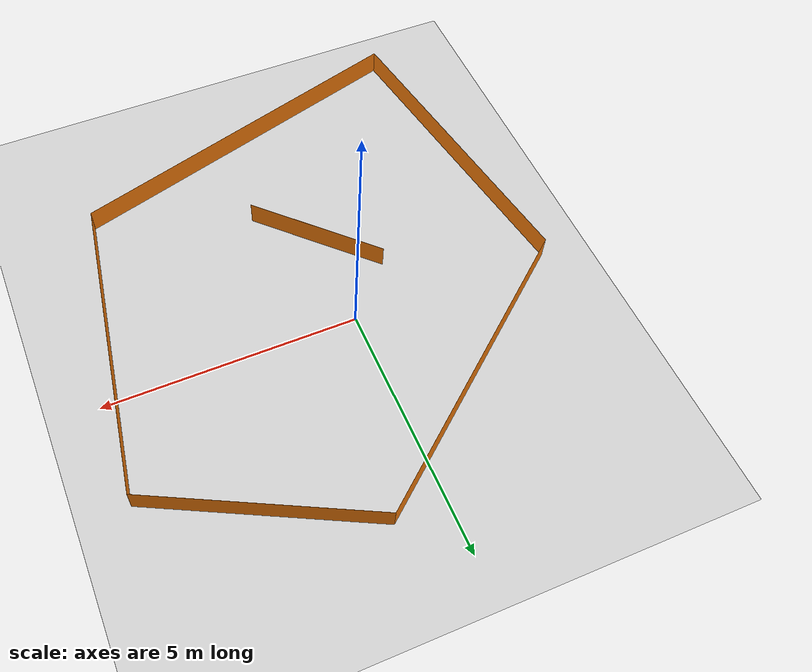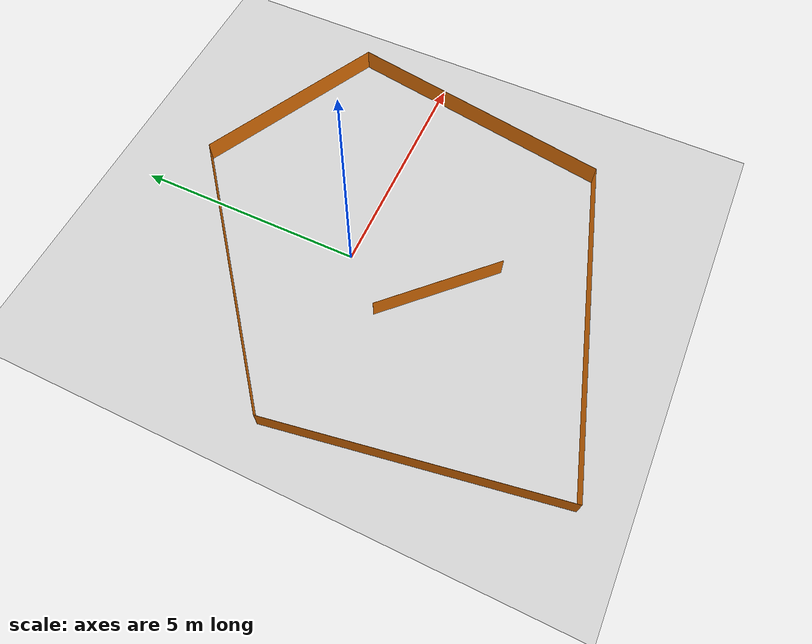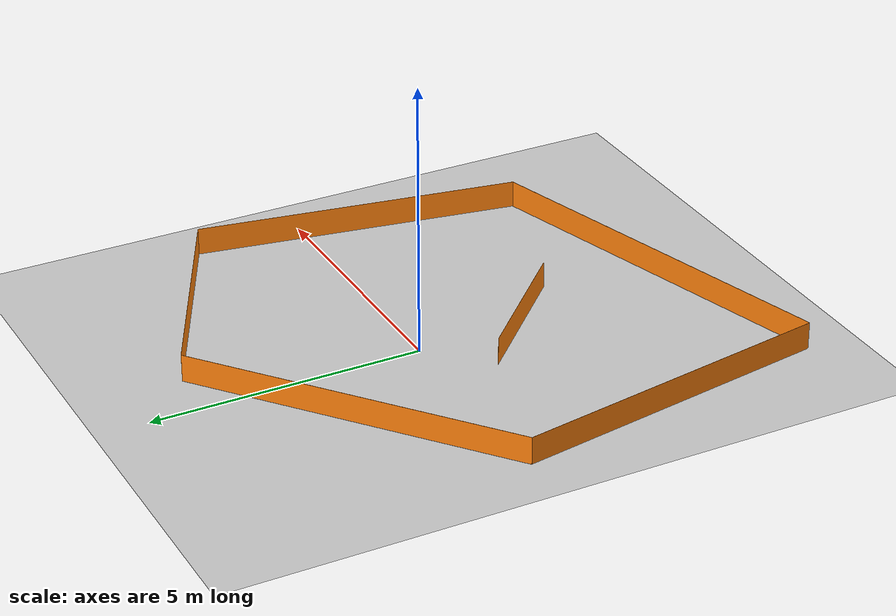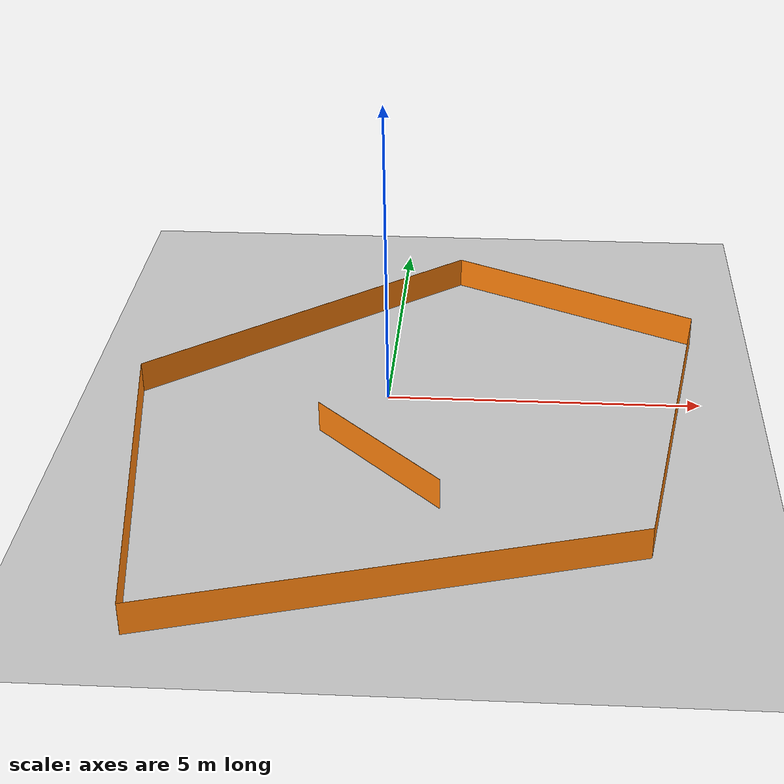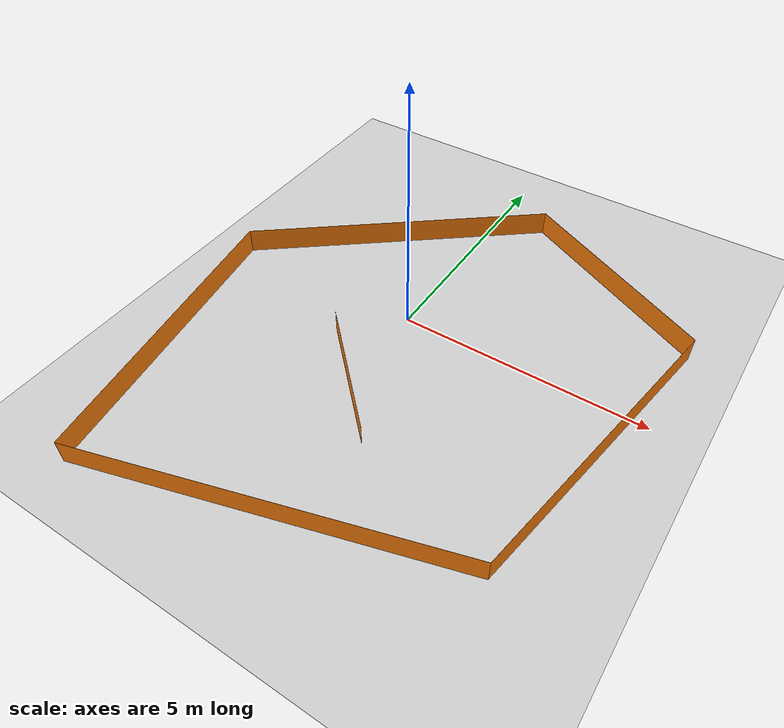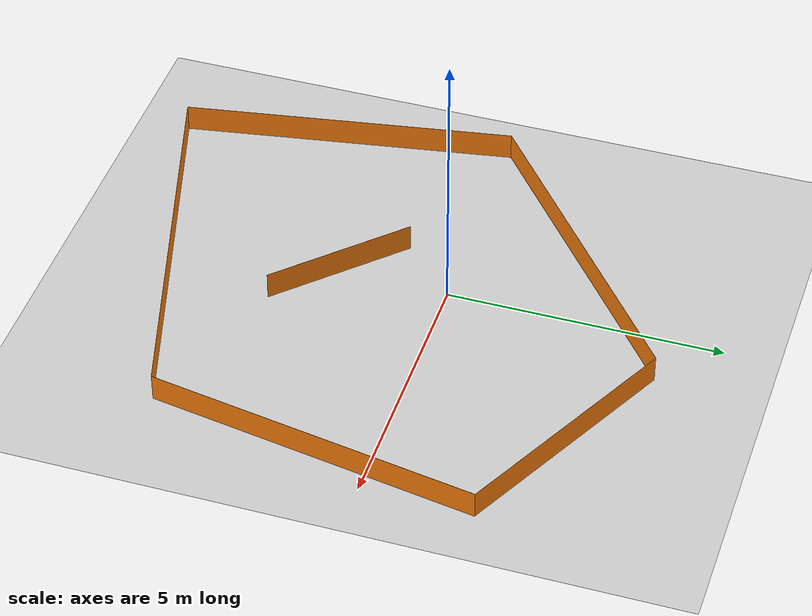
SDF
<sdf version='1.9'>
  <world name='default'>

    <include>
      <uri>https://fuel.gazebosim.org/1.0/OpenRobotics/models/Sun</uri>
    </include>

    <include>
      <uri>https://fuel.gazebosim.org/1.0/OpenRobotics/models/Ground Plane</uri>
    </include>

    <model name='wall_0'>
      <static>1</static>
      <link name='link'>
        <collision name='collision'>
          <geometry>
            <box>
              <size>6.08276 0.001 1</size>
            </box>
          </geometry>
        </collision>
        <visual name='visual'>
          <geometry>
            <box>
              <size>6.08276 0.001 1</size>
            </box>
          </geometry>
          <material>
            <ambient>1 0.5088 0.0468 1</ambient>
            <diffuse>1 0.5088 0.0468 1</diffuse>
            <specular>0.5 0.5 0.5 0.5</specular>
          </material>
        </visual>
      </link>
      <pose>-3.5 -3 0 0 0 -1.40565</pose>
    </model>

    <model name='wall_1'>
      <static>1</static>
      <link name='link'>
        <collision name='collision'>
          <geometry>
            <box>
              <size>7.28011 0.001 1</size>
            </box>
          </geometry>
        </collision>
        <visual name='visual'>
          <geometry>
            <box>
              <size>7.28011 0.001 1</size>
            </box>
          </geometry>
          <material>
            <ambient>1 0.5088 0.0468 1</ambient>
            <diffuse>1 0.5088 0.0468 1</diffuse>
            <specular>0.5 0.5 0.5 0.5</specular>
          </material>
        </visual>
      </link>
      <pose>0.5 -5 0 0 -0 0.2783</pose>
    </model>
    <model name='wall_2'>
      <static>1</static>
      <link name='link'>
        <collision name='collision'>
          <geometry>
            <box>
              <size>6.08276 0.001 1</size>
            </box>
          </geometry>
        </collision>
        <visual name='visual'>
          <geometry>
            <box>
              <size>6.08276 0.001 1</size>
            </box>
          </geometry>
          <material>
            <ambient>1 0.5088 0.0468 1</ambient>
            <diffuse>1 0.5088 0.0468 1</diffuse>
            <specular>0.5 0.5 0.5 0.5</specular>
          </material>
        </visual>
      </link>
      <pose>4.5 -1 0 0 -0 1.40565</pose>
    </model>
    <model name='wall_3'>
      <static>1</static>
      <link name='link'>
        <collision name='collision'>
          <geometry>
            <box>
              <size>4.47214 0.001 1</size>
            </box>
          </geometry>
        </collision>
        <visual name='visual'>
          <geometry>
            <box>
              <size>4.47214 0.001 1</size>
            </box>
          </geometry>
          <material>
            <ambient>1 0.5088 0.0468 1</ambient>
            <diffuse>1 0.5088 0.0468 1</diffuse>
            <specular>0.5 0.5 0.5 0.5</specular>
          </material>
        </visual>
      </link>
      <pose>3 3 0 0 -0 2.67794</pose>
    </model>
    <model name='wall_4'>
      <static>1</static>
      <link name='link'>
        <collision name='collision'>
          <geometry>
            <box>
              <size>6.40312 0.001 1</size>
            </box>
          </geometry>
        </collision>
        <visual name='visual'>
          <geometry>
            <box>
              <size>6.40312 0.001 1</size>
            </box>
          </geometry>
          <material>
            <ambient>1 0.5088 0.0468 1</ambient>
            <diffuse>1 0.5088 0.0468 1</diffuse>
            <specular>0.5 0.5 0.5 0.5</specular>
          </material>
        </visual>
      </link>
      <pose>-1.5 2 0 0 0 -2.46685</pose>
    </model>
    <model name='wall_5'>
      <static>1</static>
      <link name='link'>
        <collision name='collision'>
          <geometry>
            <box>
              <size>2.82843 0.001 1</size>
            </box>
          </geometry>
        </collision>
        <visual name='visual'>
          <geometry>
            <box>
              <size>2.82843 0.001 1</size>
            </box>
          </geometry>
          <material>
            <ambient>1 0.5088 0.0468 1</ambient>
            <diffuse>1 0.5088 0.0468 1</diffuse>
            <specular>0.5 0.5 0.5 0.5</specular>
          </material>
        </visual>
      </link>
      <pose>0 -2 0 0 0 -0.785398</pose>
    </model>

    <gravity>0 0 -9.8</gravity>
    <magnetic_field>6e-06 2.3e-05 -4.2e-05</magnetic_field>
    <atmosphere type='adiabatic'/>
    <scene>
      <ambient>0.4 0.4 0.4 1</ambient>
      <background>0.7 0.7 0.7 1</background>
      <shadows>true</shadows>
    </scene>

    <physics name='default_physics' type='ignored'>
      <max_step_size>0.001</max_step_size>
      <real_time_factor>1</real_time_factor>
    </physics>

    <gui fullscreen='0'>
      <camera name='user_camera'>
        <pose>5 -5 2 0 0.275643 2.35619</pose>
        <view_controller>orbit</view_controller>
        <projection_type>perspective</projection_type>
      </camera>
    </gui>
  </world>
</sdf>
